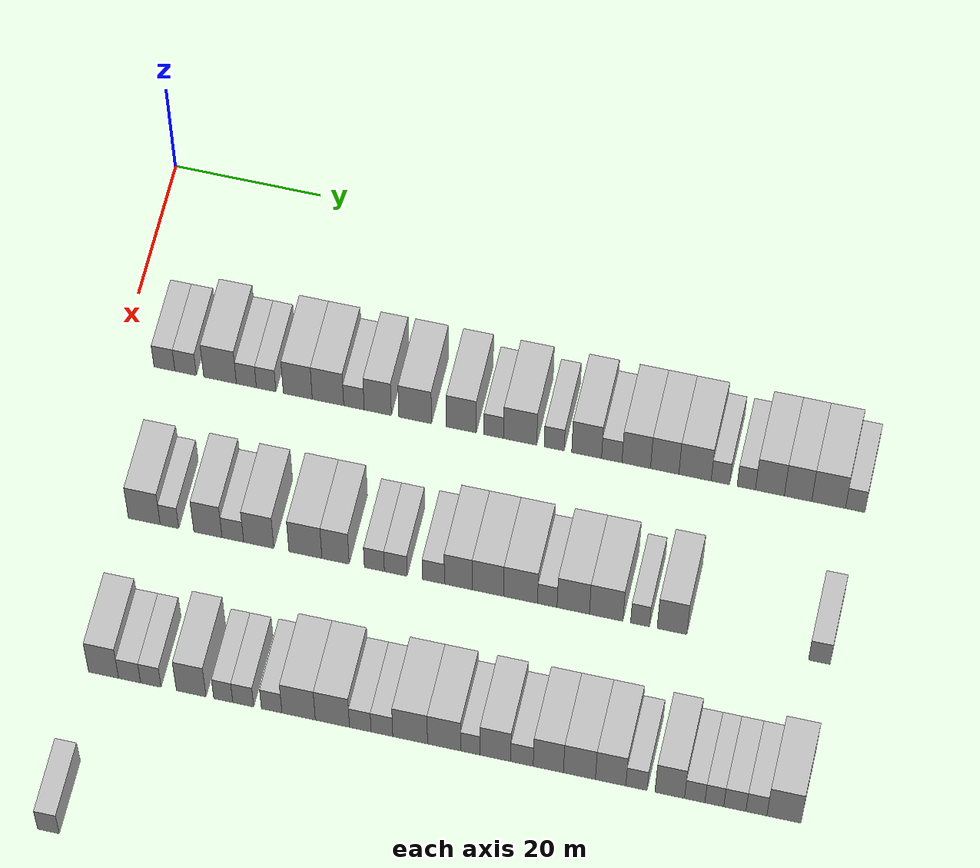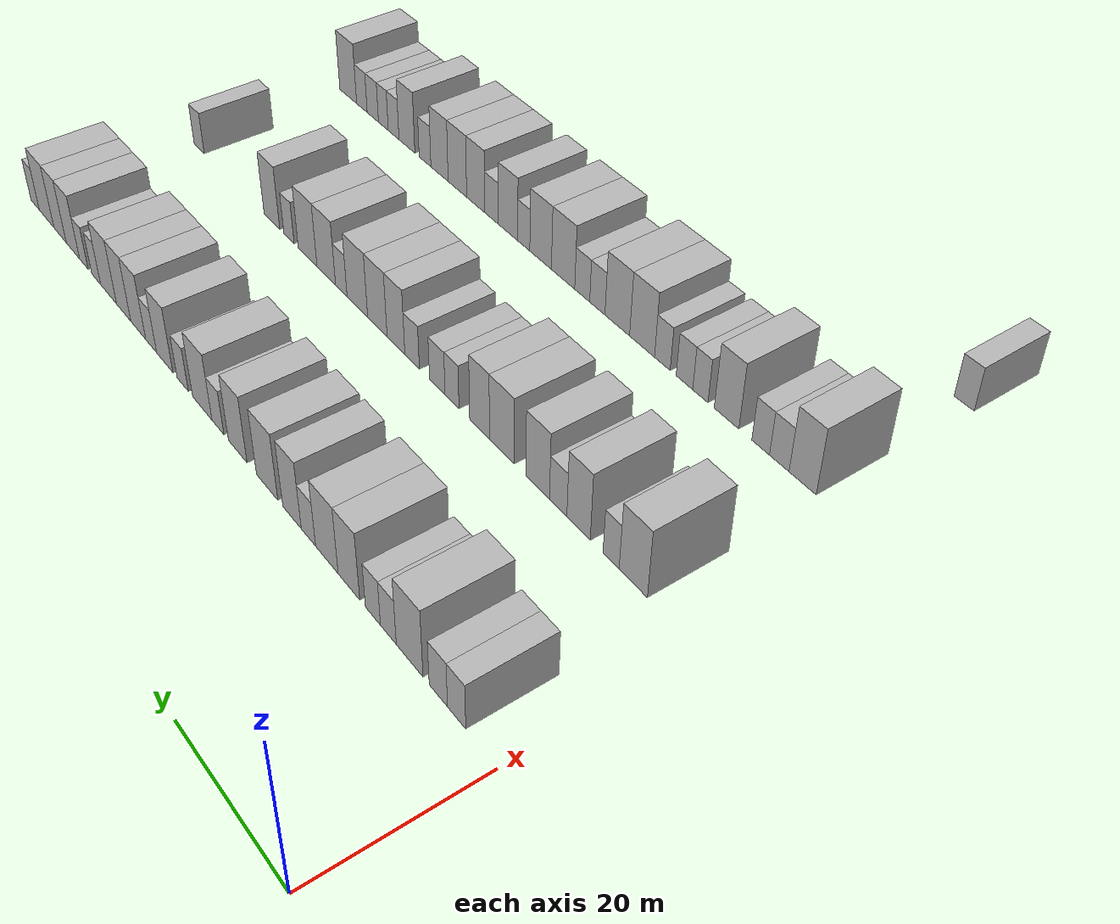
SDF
<sdf version="1.6">
 <world name="default">
  <model name="building_89">
   <static>1</static>
   <pose>25.0000 6.2380 0 0.000000 0.000000 0.000000</pose>
   <link name="link">
    <pose>0 0 3.00 0 0 0</pose>
    <collision name="collision"><geometry><box><size>10.0000 2.8306 6.0000</size></box></geometry></collision>
    <visual name="visual">
     <cast_shadows>0</cast_shadows>
     <geometry><box><size>10.0000 2.8306 6.0000</size></box></geometry>
     <material>
      <script>
       <uri>model://HANNAS_wall/materials/scripts</uri>
       <uri>model://HANNAS_wall/materials/textures</uri>
       <name>vrc/HANNAS_wall</name>
      </script>
     </material>
    </visual>
   </link>
  </model>
  <model name="building_90">
   <static>1</static>
   <pose>25.0000 9.1063 0 0.000000 0.000000 0.000000</pose>
   <link name="link">
    <pose>0 0 3.00 0 0 0</pose>
    <collision name="collision"><geometry><box><size>10.0000 2.9060 6.0000</size></box></geometry></collision>
    <visual name="visual">
     <cast_shadows>0</cast_shadows>
     <geometry><box><size>10.0000 2.9060 6.0000</size></box></geometry>
     <material>
      <script>
       <uri>model://HANNAS_wall/materials/scripts</uri>
       <uri>model://HANNAS_wall/materials/textures</uri>
       <name>vrc/HANNAS_wall</name>
      </script>
     </material>
    </visual>
   </link>
  </model>
  <model name="building_91">
   <static>1</static>
   <pose>25.0000 13.7722 0 0.000000 0.000000 0.000000</pose>
   <link name="link">
    <pose>0 0 4.50 0 0 0</pose>
    <collision name="collision"><geometry><box><size>10.0000 4.4259 9.0000</size></box></geometry></collision>
    <visual name="visual">
     <cast_shadows>0</cast_shadows>
     <geometry><box><size>10.0000 4.4259 9.0000</size></box></geometry>
     <material>
      <script>
       <uri>model://HANNAS_wall/materials/scripts</uri>
       <uri>model://HANNAS_wall/materials/textures</uri>
       <name>vrc/HANNAS_wall</name>
      </script>
     </material>
    </visual>
   </link>
  </model>
  <model name="building_92">
   <static>1</static>
   <pose>25.0000 17.3323 0 0.000000 0.000000 0.000000</pose>
   <link name="link">
    <pose>0 0 3.00 0 0 0</pose>
    <collision name="collision"><geometry><box><size>10.0000 2.6942 6.0000</size></box></geometry></collision>
    <visual name="visual">
     <cast_shadows>0</cast_shadows>
     <geometry><box><size>10.0000 2.6942 6.0000</size></box></geometry>
     <material>
      <script>
       <uri>model://HANNAS_wall/materials/scripts</uri>
       <uri>model://HANNAS_wall/materials/textures</uri>
       <name>vrc/HANNAS_wall</name>
      </script>
     </material>
    </visual>
   </link>
  </model>
  <model name="building_93">
   <static>1</static>
   <pose>25.0000 20.0000 0 0.000000 0.000000 0.000000</pose>
   <link name="link">
    <pose>0 0 3.00 0 0 0</pose>
    <collision name="collision"><geometry><box><size>10.0000 2.6412 6.0000</size></box></geometry></collision>
    <visual name="visual">
     <cast_shadows>0</cast_shadows>
     <geometry><box><size>10.0000 2.6412 6.0000</size></box></geometry>
     <material>
      <script>
       <uri>model://HANNAS_wall/materials/scripts</uri>
       <uri>model://HANNAS_wall/materials/textures</uri>
       <name>vrc/HANNAS_wall</name>
      </script>
     </material>
    </visual>
   </link>
  </model>
  <model name="building_94">
   <static>1</static>
   <pose>25.0000 24.2713 0 0.000000 0.000000 0.000000</pose>
   <link name="link">
    <pose>0 0 4.50 0 0 0</pose>
    <collision name="collision"><geometry><box><size>10.0000 3.9014 9.0000</size></box></geometry></collision>
    <visual name="visual">
     <cast_shadows>0</cast_shadows>
     <geometry><box><size>10.0000 3.9014 9.0000</size></box></geometry>
     <material>
      <script>
       <uri>model://HANNAS_wall/materials/scripts</uri>
       <uri>model://HANNAS_wall/materials/textures</uri>
       <name>vrc/HANNAS_wall</name>
      </script>
     </material>
    </visual>
   </link>
  </model>
  <model name="building_95">
   <static>1</static>
   <pose>25.0000 28.3381 0 0.000000 0.000000 0.000000</pose>
   <link name="link">
    <pose>0 0 4.50 0 0 0</pose>
    <collision name="collision"><geometry><box><size>10.0000 4.2322 9.0000</size></box></geometry></collision>
    <visual name="visual">
     <cast_shadows>0</cast_shadows>
     <geometry><box><size>10.0000 4.2322 9.0000</size></box></geometry>
     <material>
      <script>
       <uri>model://HANNAS_wall/materials/scripts</uri>
       <uri>model://HANNAS_wall/materials/textures</uri>
       <name>vrc/HANNAS_wall</name>
      </script>
     </material>
    </visual>
   </link>
  </model>
  <model name="building_96">
   <static>1</static>
   <pose>25.0000 31.8337 0 0.000000 0.000000 0.000000</pose>
   <link name="link">
    <pose>0 0 3.00 0 0 0</pose>
    <collision name="collision"><geometry><box><size>10.0000 2.7592 6.0000</size></box></geometry></collision>
    <visual name="visual">
     <cast_shadows>0</cast_shadows>
     <geometry><box><size>10.0000 2.7592 6.0000</size></box></geometry>
     <material>
      <script>
       <uri>model://HANNAS_wall/materials/scripts</uri>
       <uri>model://HANNAS_wall/materials/textures</uri>
       <name>vrc/HANNAS_wall</name>
      </script>
     </material>
    </visual>
   </link>
  </model>
  <model name="building_97">
   <static>1</static>
   <pose>25.0000 35.0362 0 0.000000 0.000000 0.000000</pose>
   <link name="link">
    <pose>0 0 4.50 0 0 0</pose>
    <collision name="collision"><geometry><box><size>10.0000 3.6457 9.0000</size></box></geometry></collision>
    <visual name="visual">
     <cast_shadows>0</cast_shadows>
     <geometry><box><size>10.0000 3.6457 9.0000</size></box></geometry>
     <material>
      <script>
       <uri>model://HANNAS_wall/materials/scripts</uri>
       <uri>model://HANNAS_wall/materials/textures</uri>
       <name>vrc/HANNAS_wall</name>
      </script>
     </material>
    </visual>
   </link>
  </model>
  <model name="building_98">
   <static>1</static>
   <pose>25.0000 40.0493 0 0.000000 0.000000 0.000000</pose>
   <link name="link">
    <pose>0 0 4.50 0 0 0</pose>
    <collision name="collision"><geometry><box><size>10.0000 4.3806 9.0000</size></box></geometry></collision>
    <visual name="visual">
     <cast_shadows>0</cast_shadows>
     <geometry><box><size>10.0000 4.3806 9.0000</size></box></geometry>
     <material>
      <script>
       <uri>model://HANNAS_wall/materials/scripts</uri>
       <uri>model://HANNAS_wall/materials/textures</uri>
       <name>vrc/HANNAS_wall</name>
      </script>
     </material>
    </visual>
   </link>
  </model>
  <model name="building_99">
   <static>1</static>
   <pose>25.0000 46.2346 0 0.000000 0.000000 0.000000</pose>
   <link name="link">
    <pose>0 0 4.50 0 0 0</pose>
    <collision name="collision"><geometry><box><size>10.0000 3.9900 9.0000</size></box></geometry></collision>
    <visual name="visual">
     <cast_shadows>0</cast_shadows>
     <geometry><box><size>10.0000 3.9900 9.0000</size></box></geometry>
     <material>
      <script>
       <uri>model://HANNAS_wall/materials/scripts</uri>
       <uri>model://HANNAS_wall/materials/textures</uri>
       <name>vrc/HANNAS_wall</name>
      </script>
     </material>
    </visual>
   </link>
  </model>
  <model name="building_100">
   <static>1</static>
   <pose>25.0000 50.5525 0 0.000000 0.000000 0.000000</pose>
   <link name="link">
    <pose>0 0 3.00 0 0 0</pose>
    <collision name="collision"><geometry><box><size>10.0000 2.6459 6.0000</size></box></geometry></collision>
    <visual name="visual">
     <cast_shadows>0</cast_shadows>
     <geometry><box><size>10.0000 2.6459 6.0000</size></box></geometry>
     <material>
      <script>
       <uri>model://HANNAS_wall/materials/scripts</uri>
       <uri>model://HANNAS_wall/materials/textures</uri>
       <name>vrc/HANNAS_wall</name>
      </script>
     </material>
    </visual>
   </link>
  </model>
  <model name="building_101">
   <static>1</static>
   <pose>25.0000 54.0810 0 0.000000 0.000000 0.000000</pose>
   <link name="link">
    <pose>0 0 4.50 0 0 0</pose>
    <collision name="collision"><geometry><box><size>10.0000 4.4110 9.0000</size></box></geometry></collision>
    <visual name="visual">
     <cast_shadows>0</cast_shadows>
     <geometry><box><size>10.0000 4.4110 9.0000</size></box></geometry>
     <material>
      <script>
       <uri>model://HANNAS_wall/materials/scripts</uri>
       <uri>model://HANNAS_wall/materials/textures</uri>
       <name>vrc/HANNAS_wall</name>
      </script>
     </material>
    </visual>
   </link>
  </model>
  <model name="building_102">
   <static>1</static>
   <pose>25.0000 58.6165 0 0.000000 0.000000 0.000000</pose>
   <link name="link">
    <pose>0 0 3.00 0 0 0</pose>
    <collision name="collision"><geometry><box><size>10.0000 2.6600 6.0000</size></box></geometry></collision>
    <visual name="visual">
     <cast_shadows>0</cast_shadows>
     <geometry><box><size>10.0000 2.6600 6.0000</size></box></geometry>
     <material>
      <script>
       <uri>model://HANNAS_wall/materials/scripts</uri>
       <uri>model://HANNAS_wall/materials/textures</uri>
       <name>vrc/HANNAS_wall</name>
      </script>
     </material>
    </visual>
   </link>
  </model>
  <model name="building_103">
   <static>1</static>
   <pose>25.0000 62.9309 0 0.000000 0.000000 0.000000</pose>
   <link name="link">
    <pose>0 0 4.50 0 0 0</pose>
    <collision name="collision"><geometry><box><size>10.0000 3.9688 9.0000</size></box></geometry></collision>
    <visual name="visual">
     <cast_shadows>0</cast_shadows>
     <geometry><box><size>10.0000 3.9688 9.0000</size></box></geometry>
     <material>
      <script>
       <uri>model://HANNAS_wall/materials/scripts</uri>
       <uri>model://HANNAS_wall/materials/textures</uri>
       <name>vrc/HANNAS_wall</name>
      </script>
     </material>
    </visual>
   </link>
  </model>
  <model name="building_104">
   <static>1</static>
   <pose>25.0000 66.2711 0 0.000000 0.000000 0.000000</pose>
   <link name="link">
    <pose>0 0 3.00 0 0 0</pose>
    <collision name="collision"><geometry><box><size>10.0000 2.7117 6.0000</size></box></geometry></collision>
    <visual name="visual">
     <cast_shadows>0</cast_shadows>
     <geometry><box><size>10.0000 2.7117 6.0000</size></box></geometry>
     <material>
      <script>
       <uri>model://HANNAS_wall/materials/scripts</uri>
       <uri>model://HANNAS_wall/materials/textures</uri>
       <name>vrc/HANNAS_wall</name>
      </script>
     </material>
    </visual>
   </link>
  </model>
  <model name="building_105">
   <static>1</static>
   <pose>25.0000 69.5205 0 0.000000 0.000000 0.000000</pose>
   <link name="link">
    <pose>0 0 4.50 0 0 0</pose>
    <collision name="collision"><geometry><box><size>10.0000 3.7871 9.0000</size></box></geometry></collision>
    <visual name="visual">
     <cast_shadows>0</cast_shadows>
     <geometry><box><size>10.0000 3.7871 9.0000</size></box></geometry>
     <material>
      <script>
       <uri>model://HANNAS_wall/materials/scripts</uri>
       <uri>model://HANNAS_wall/materials/textures</uri>
       <name>vrc/HANNAS_wall</name>
      </script>
     </material>
    </visual>
   </link>
  </model>
  <model name="building_106">
   <static>1</static>
   <pose>25.0000 73.2905 0 0.000000 0.000000 0.000000</pose>
   <link name="link">
    <pose>0 0 4.50 0 0 0</pose>
    <collision name="collision"><geometry><box><size>10.0000 3.7529 9.0000</size></box></geometry></collision>
    <visual name="visual">
     <cast_shadows>0</cast_shadows>
     <geometry><box><size>10.0000 3.7529 9.0000</size></box></geometry>
     <material>
      <script>
       <uri>model://HANNAS_wall/materials/scripts</uri>
       <uri>model://HANNAS_wall/materials/textures</uri>
       <name>vrc/HANNAS_wall</name>
      </script>
     </material>
    </visual>
   </link>
  </model>
  <model name="building_107">
   <static>1</static>
   <pose>25.0000 77.3061 0 0.000000 0.000000 0.000000</pose>
   <link name="link">
    <pose>0 0 4.50 0 0 0</pose>
    <collision name="collision"><geometry><box><size>10.0000 4.2783 9.0000</size></box></geometry></collision>
    <visual name="visual">
     <cast_shadows>0</cast_shadows>
     <geometry><box><size>10.0000 4.2783 9.0000</size></box></geometry>
     <material>
      <script>
       <uri>model://HANNAS_wall/materials/scripts</uri>
       <uri>model://HANNAS_wall/materials/textures</uri>
       <name>vrc/HANNAS_wall</name>
      </script>
     </material>
    </visual>
   </link>
  </model>
  <model name="building_108">
   <static>1</static>
   <pose>25.0000 80.6603 0 0.000000 0.000000 0.000000</pose>
   <link name="link">
    <pose>0 0 3.00 0 0 0</pose>
    <collision name="collision"><geometry><box><size>10.0000 2.4303 6.0000</size></box></geometry></collision>
    <visual name="visual">
     <cast_shadows>0</cast_shadows>
     <geometry><box><size>10.0000 2.4303 6.0000</size></box></geometry>
     <material>
      <script>
       <uri>model://HANNAS_wall/materials/scripts</uri>
       <uri>model://HANNAS_wall/materials/textures</uri>
       <name>vrc/HANNAS_wall</name>
      </script>
     </material>
    </visual>
   </link>
  </model>
  <model name="building_109">
   <static>1</static>
   <pose>25.0000 84.0819 0 0.000000 0.000000 0.000000</pose>
   <link name="link">
    <pose>0 0 3.00 0 0 0</pose>
    <collision name="collision"><geometry><box><size>10.0000 2.4129 6.0000</size></box></geometry></collision>
    <visual name="visual">
     <cast_shadows>0</cast_shadows>
     <geometry><box><size>10.0000 2.4129 6.0000</size></box></geometry>
     <material>
      <script>
       <uri>model://HANNAS_wall/materials/scripts</uri>
       <uri>model://HANNAS_wall/materials/textures</uri>
       <name>vrc/HANNAS_wall</name>
      </script>
     </material>
    </visual>
   </link>
  </model>
  <model name="building_110">
   <static>1</static>
   <pose>25.0000 87.1964 0 0.000000 0.000000 0.000000</pose>
   <link name="link">
    <pose>0 0 4.50 0 0 0</pose>
    <collision name="collision"><geometry><box><size>10.0000 3.8161 9.0000</size></box></geometry></collision>
    <visual name="visual">
     <cast_shadows>0</cast_shadows>
     <geometry><box><size>10.0000 3.8161 9.0000</size></box></geometry>
     <material>
      <script>
       <uri>model://HANNAS_wall/materials/scripts</uri>
       <uri>model://HANNAS_wall/materials/textures</uri>
       <name>vrc/HANNAS_wall</name>
      </script>
     </material>
    </visual>
   </link>
  </model>
  <model name="building_111">
   <static>1</static>
   <pose>25.0000 90.9120 0 0.000000 0.000000 0.000000</pose>
   <link name="link">
    <pose>0 0 4.50 0 0 0</pose>
    <collision name="collision"><geometry><box><size>10.0000 3.6151 9.0000</size></box></geometry></collision>
    <visual name="visual">
     <cast_shadows>0</cast_shadows>
     <geometry><box><size>10.0000 3.6151 9.0000</size></box></geometry>
     <material>
      <script>
       <uri>model://HANNAS_wall/materials/scripts</uri>
       <uri>model://HANNAS_wall/materials/textures</uri>
       <name>vrc/HANNAS_wall</name>
      </script>
     </material>
    </visual>
   </link>
  </model>
  <model name="building_112">
   <static>1</static>
   <pose>25.0000 94.9383 0 0.000000 0.000000 0.000000</pose>
   <link name="link">
    <pose>0 0 4.50 0 0 0</pose>
    <collision name="collision"><geometry><box><size>10.0000 4.4376 9.0000</size></box></geometry></collision>
    <visual name="visual">
     <cast_shadows>0</cast_shadows>
     <geometry><box><size>10.0000 4.4376 9.0000</size></box></geometry>
     <material>
      <script>
       <uri>model://HANNAS_wall/materials/scripts</uri>
       <uri>model://HANNAS_wall/materials/textures</uri>
       <name>vrc/HANNAS_wall</name>
      </script>
     </material>
    </visual>
   </link>
  </model>
  <model name="building_113">
   <static>1</static>
   <pose>25.0000 98.4319 0 0.000000 0.000000 0.000000</pose>
   <link name="link">
    <pose>0 0 3.00 0 0 0</pose>
    <collision name="collision"><geometry><box><size>10.0000 2.5497 6.0000</size></box></geometry></collision>
    <visual name="visual">
     <cast_shadows>0</cast_shadows>
     <geometry><box><size>10.0000 2.5497 6.0000</size></box></geometry>
     <material>
      <script>
       <uri>model://HANNAS_wall/materials/scripts</uri>
       <uri>model://HANNAS_wall/materials/textures</uri>
       <name>vrc/HANNAS_wall</name>
      </script>
     </material>
    </visual>
   </link>
  </model>
  <model name="building_285">
   <static>1</static>
   <pose>47.0000 9.3101 0 0.000000 0.000000 0.000000</pose>
   <link name="link">
    <pose>0 0 4.50 0 0 0</pose>
    <collision name="collision"><geometry><box><size>10.0000 4.2417 9.0000</size></box></geometry></collision>
    <visual name="visual">
     <cast_shadows>0</cast_shadows>
     <geometry><box><size>10.0000 4.2417 9.0000</size></box></geometry>
     <material>
      <script>
       <uri>model://HANNAS_wall/materials/scripts</uri>
       <uri>model://HANNAS_wall/materials/textures</uri>
       <name>vrc/HANNAS_wall</name>
      </script>
     </material>
    </visual>
   </link>
  </model>
  <model name="building_286">
   <static>1</static>
   <pose>47.0000 12.6645 0 0.000000 0.000000 0.000000</pose>
   <link name="link">
    <pose>0 0 3.00 0 0 0</pose>
    <collision name="collision"><geometry><box><size>10.0000 2.4671 6.0000</size></box></geometry></collision>
    <visual name="visual">
     <cast_shadows>0</cast_shadows>
     <geometry><box><size>10.0000 2.4671 6.0000</size></box></geometry>
     <material>
      <script>
       <uri>model://HANNAS_wall/materials/scripts</uri>
       <uri>model://HANNAS_wall/materials/textures</uri>
       <name>vrc/HANNAS_wall</name>
      </script>
     </material>
    </visual>
   </link>
  </model>
  <model name="building_287">
   <static>1</static>
   <pose>47.0000 17.7781 0 0.000000 0.000000 0.000000</pose>
   <link name="link">
    <pose>0 0 4.50 0 0 0</pose>
    <collision name="collision"><geometry><box><size>10.0000 3.7601 9.0000</size></box></geometry></collision>
    <visual name="visual">
     <cast_shadows>0</cast_shadows>
     <geometry><box><size>10.0000 3.7601 9.0000</size></box></geometry>
     <material>
      <script>
       <uri>model://HANNAS_wall/materials/scripts</uri>
       <uri>model://HANNAS_wall/materials/textures</uri>
       <name>vrc/HANNAS_wall</name>
      </script>
     </material>
    </visual>
   </link>
  </model>
  <model name="building_288">
   <static>1</static>
   <pose>47.0000 21.0905 0 0.000000 0.000000 0.000000</pose>
   <link name="link">
    <pose>0 0 3.00 0 0 0</pose>
    <collision name="collision"><geometry><box><size>10.0000 2.8648 6.0000</size></box></geometry></collision>
    <visual name="visual">
     <cast_shadows>0</cast_shadows>
     <geometry><box><size>10.0000 2.8648 6.0000</size></box></geometry>
     <material>
      <script>
       <uri>model://HANNAS_wall/materials/scripts</uri>
       <uri>model://HANNAS_wall/materials/textures</uri>
       <name>vrc/HANNAS_wall</name>
      </script>
     </material>
    </visual>
   </link>
  </model>
  <model name="building_289">
   <static>1</static>
   <pose>47.0000 24.5270 0 0.000000 0.000000 0.000000</pose>
   <link name="link">
    <pose>0 0 4.50 0 0 0</pose>
    <collision name="collision"><geometry><box><size>10.0000 4.0083 9.0000</size></box></geometry></collision>
    <visual name="visual">
     <cast_shadows>0</cast_shadows>
     <geometry><box><size>10.0000 4.0083 9.0000</size></box></geometry>
     <material>
      <script>
       <uri>model://HANNAS_wall/materials/scripts</uri>
       <uri>model://HANNAS_wall/materials/textures</uri>
       <name>vrc/HANNAS_wall</name>
      </script>
     </material>
    </visual>
   </link>
  </model>
  <model name="building_290">
   <static>1</static>
   <pose>47.0000 30.7119 0 0.000000 0.000000 0.000000</pose>
   <link name="link">
    <pose>0 0 4.50 0 0 0</pose>
    <collision name="collision"><geometry><box><size>10.0000 4.3614 9.0000</size></box></geometry></collision>
    <visual name="visual">
     <cast_shadows>0</cast_shadows>
     <geometry><box><size>10.0000 4.3614 9.0000</size></box></geometry>
     <material>
      <script>
       <uri>model://HANNAS_wall/materials/scripts</uri>
       <uri>model://HANNAS_wall/materials/textures</uri>
       <name>vrc/HANNAS_wall</name>
      </script>
     </material>
    </visual>
   </link>
  </model>
  <model name="building_291">
   <static>1</static>
   <pose>47.0000 34.6973 0 0.000000 0.000000 0.000000</pose>
   <link name="link">
    <pose>0 0 4.50 0 0 0</pose>
    <collision name="collision"><geometry><box><size>10.0000 3.6093 9.0000</size></box></geometry></collision>
    <visual name="visual">
     <cast_shadows>0</cast_shadows>
     <geometry><box><size>10.0000 3.6093 9.0000</size></box></geometry>
     <material>
      <script>
       <uri>model://HANNAS_wall/materials/scripts</uri>
       <uri>model://HANNAS_wall/materials/textures</uri>
       <name>vrc/HANNAS_wall</name>
      </script>
     </material>
    </visual>
   </link>
  </model>
  <model name="building_292">
   <static>1</static>
   <pose>47.0000 39.8232 0 0.000000 0.000000 0.000000</pose>
   <link name="link">
    <pose>0 0 3.00 0 0 0</pose>
    <collision name="collision"><geometry><box><size>10.0000 2.6424 6.0000</size></box></geometry></collision>
    <visual name="visual">
     <cast_shadows>0</cast_shadows>
     <geometry><box><size>10.0000 2.6424 6.0000</size></box></geometry>
     <material>
      <script>
       <uri>model://HANNAS_wall/materials/scripts</uri>
       <uri>model://HANNAS_wall/materials/textures</uri>
       <name>vrc/HANNAS_wall</name>
      </script>
     </material>
    </visual>
   </link>
  </model>
  <model name="building_293">
   <static>1</static>
   <pose>47.0000 42.6439 0 0.000000 0.000000 0.000000</pose>
   <link name="link">
    <pose>0 0 3.00 0 0 0</pose>
    <collision name="collision"><geometry><box><size>10.0000 2.9992 6.0000</size></box></geometry></collision>
    <visual name="visual">
     <cast_shadows>0</cast_shadows>
     <geometry><box><size>10.0000 2.9992 6.0000</size></box></geometry>
     <material>
      <script>
       <uri>model://HANNAS_wall/materials/scripts</uri>
       <uri>model://HANNAS_wall/materials/textures</uri>
       <name>vrc/HANNAS_wall</name>
      </script>
     </material>
    </visual>
   </link>
  </model>
  <model name="building_294">
   <static>1</static>
   <pose>47.0000 47.5963 0 0.000000 0.000000 0.000000</pose>
   <link name="link">
    <pose>0 0 3.00 0 0 0</pose>
    <collision name="collision"><geometry><box><size>10.0000 2.9055 6.0000</size></box></geometry></collision>
    <visual name="visual">
     <cast_shadows>0</cast_shadows>
     <geometry><box><size>10.0000 2.9055 6.0000</size></box></geometry>
     <material>
      <script>
       <uri>model://HANNAS_wall/materials/scripts</uri>
       <uri>model://HANNAS_wall/materials/textures</uri>
       <name>vrc/HANNAS_wall</name>
      </script>
     </material>
    </visual>
   </link>
  </model>
  <model name="building_295">
   <static>1</static>
   <pose>47.0000 50.8690 0 0.000000 0.000000 0.000000</pose>
   <link name="link">
    <pose>0 0 4.50 0 0 0</pose>
    <collision name="collision"><geometry><box><size>10.0000 3.6399 9.0000</size></box></geometry></collision>
    <visual name="visual">
     <cast_shadows>0</cast_shadows>
     <geometry><box><size>10.0000 3.6399 9.0000</size></box></geometry>
     <material>
      <script>
       <uri>model://HANNAS_wall/materials/scripts</uri>
       <uri>model://HANNAS_wall/materials/textures</uri>
       <name>vrc/HANNAS_wall</name>
      </script>
     </material>
    </visual>
   </link>
  </model>
  <model name="building_296">
   <static>1</static>
   <pose>47.0000 54.7414 0 0.000000 0.000000 0.000000</pose>
   <link name="link">
    <pose>0 0 4.50 0 0 0</pose>
    <collision name="collision"><geometry><box><size>10.0000 4.1049 9.0000</size></box></geometry></collision>
    <visual name="visual">
     <cast_shadows>0</cast_shadows>
     <geometry><box><size>10.0000 4.1049 9.0000</size></box></geometry>
     <material>
      <script>
       <uri>model://HANNAS_wall/materials/scripts</uri>
       <uri>model://HANNAS_wall/materials/textures</uri>
       <name>vrc/HANNAS_wall</name>
      </script>
     </material>
    </visual>
   </link>
  </model>
  <model name="building_297">
   <static>1</static>
   <pose>47.0000 59.0244 0 0.000000 0.000000 0.000000</pose>
   <link name="link">
    <pose>0 0 4.50 0 0 0</pose>
    <collision name="collision"><geometry><box><size>10.0000 4.4610 9.0000</size></box></geometry></collision>
    <visual name="visual">
     <cast_shadows>0</cast_shadows>
     <geometry><box><size>10.0000 4.4610 9.0000</size></box></geometry>
     <material>
      <script>
       <uri>model://HANNAS_wall/materials/scripts</uri>
       <uri>model://HANNAS_wall/materials/textures</uri>
       <name>vrc/HANNAS_wall</name>
      </script>
     </material>
    </visual>
   </link>
  </model>
  <model name="building_298">
   <static>1</static>
   <pose>47.0000 62.5370 0 0.000000 0.000000 0.000000</pose>
   <link name="link">
    <pose>0 0 3.00 0 0 0</pose>
    <collision name="collision"><geometry><box><size>10.0000 2.5642 6.0000</size></box></geometry></collision>
    <visual name="visual">
     <cast_shadows>0</cast_shadows>
     <geometry><box><size>10.0000 2.5642 6.0000</size></box></geometry>
     <material>
      <script>
       <uri>model://HANNAS_wall/materials/scripts</uri>
       <uri>model://HANNAS_wall/materials/textures</uri>
       <name>vrc/HANNAS_wall</name>
      </script>
     </material>
    </visual>
   </link>
  </model>
  <model name="building_299">
   <static>1</static>
   <pose>47.0000 65.9339 0 0.000000 0.000000 0.000000</pose>
   <link name="link">
    <pose>0 0 4.50 0 0 0</pose>
    <collision name="collision"><geometry><box><size>10.0000 4.2296 9.0000</size></box></geometry></collision>
    <visual name="visual">
     <cast_shadows>0</cast_shadows>
     <geometry><box><size>10.0000 4.2296 9.0000</size></box></geometry>
     <material>
      <script>
       <uri>model://HANNAS_wall/materials/scripts</uri>
       <uri>model://HANNAS_wall/materials/textures</uri>
       <name>vrc/HANNAS_wall</name>
      </script>
     </material>
    </visual>
   </link>
  </model>
  <model name="building_300">
   <static>1</static>
   <pose>47.0000 70.2361 0 0.000000 0.000000 0.000000</pose>
   <link name="link">
    <pose>0 0 4.50 0 0 0</pose>
    <collision name="collision"><geometry><box><size>10.0000 4.3748 9.0000</size></box></geometry></collision>
    <visual name="visual">
     <cast_shadows>0</cast_shadows>
     <geometry><box><size>10.0000 4.3748 9.0000</size></box></geometry>
     <material>
      <script>
       <uri>model://HANNAS_wall/materials/scripts</uri>
       <uri>model://HANNAS_wall/materials/textures</uri>
       <name>vrc/HANNAS_wall</name>
      </script>
     </material>
    </visual>
   </link>
  </model>
  <model name="building_301">
   <static>1</static>
   <pose>47.0000 74.6556 0 0.000000 0.000000 0.000000</pose>
   <link name="link">
    <pose>0 0 3.00 0 0 0</pose>
    <collision name="collision"><geometry><box><size>10.0000 2.4643 6.0000</size></box></geometry></collision>
    <visual name="visual">
     <cast_shadows>0</cast_shadows>
     <geometry><box><size>10.0000 2.4643 6.0000</size></box></geometry>
     <material>
      <script>
       <uri>model://HANNAS_wall/materials/scripts</uri>
       <uri>model://HANNAS_wall/materials/textures</uri>
       <name>vrc/HANNAS_wall</name>
      </script>
     </material>
    </visual>
   </link>
  </model>
  <model name="building_302">
   <static>1</static>
   <pose>47.0000 78.8226 0 0.000000 0.000000 0.000000</pose>
   <link name="link">
    <pose>0 0 4.50 0 0 0</pose>
    <collision name="collision"><geometry><box><size>10.0000 3.8697 9.0000</size></box></geometry></collision>
    <visual name="visual">
     <cast_shadows>0</cast_shadows>
     <geometry><box><size>10.0000 3.8697 9.0000</size></box></geometry>
     <material>
      <script>
       <uri>model://HANNAS_wall/materials/scripts</uri>
       <uri>model://HANNAS_wall/materials/textures</uri>
       <name>vrc/HANNAS_wall</name>
      </script>
     </material>
    </visual>
   </link>
  </model>
  <model name="building_303">
   <static>1</static>
   <pose>47.0000 97.9336 0 0.000000 0.000000 0.000000</pose>
   <link name="link">
    <pose>0 0 3.00 0 0 0</pose>
    <collision name="collision"><geometry><box><size>10.0000 2.7841 6.0000</size></box></geometry></collision>
    <visual name="visual">
     <cast_shadows>0</cast_shadows>
     <geometry><box><size>10.0000 2.7841 6.0000</size></box></geometry>
     <material>
      <script>
       <uri>model://HANNAS_wall/materials/scripts</uri>
       <uri>model://HANNAS_wall/materials/textures</uri>
       <name>vrc/HANNAS_wall</name>
      </script>
     </material>
    </visual>
   </link>
  </model>
  <model name="building_473">
   <static>1</static>
   <pose>69.0000 9.7690 0 0.000000 0.000000 0.000000</pose>
   <link name="link">
    <pose>0 0 4.50 0 0 0</pose>
    <collision name="collision"><geometry><box><size>10.0000 3.9402 9.0000</size></box></geometry></collision>
    <visual name="visual">
     <cast_shadows>0</cast_shadows>
     <geometry><box><size>10.0000 3.9402 9.0000</size></box></geometry>
     <material>
      <script>
       <uri>model://HANNAS_wall/materials/scripts</uri>
       <uri>model://HANNAS_wall/materials/textures</uri>
       <name>vrc/HANNAS_wall</name>
      </script>
     </material>
    </visual>
   </link>
  </model>
  <model name="building_474">
   <static>1</static>
   <pose>69.0000 13.1865 0 0.000000 0.000000 0.000000</pose>
   <link name="link">
    <pose>0 0 3.00 0 0 0</pose>
    <collision name="collision"><geometry><box><size>10.0000 2.8950 6.0000</size></box></geometry></collision>
    <visual name="visual">
     <cast_shadows>0</cast_shadows>
     <geometry><box><size>10.0000 2.8950 6.0000</size></box></geometry>
     <material>
      <script>
       <uri>model://HANNAS_wall/materials/scripts</uri>
       <uri>model://HANNAS_wall/materials/textures</uri>
       <name>vrc/HANNAS_wall</name>
      </script>
     </material>
    </visual>
   </link>
  </model>
  <model name="building_475">
   <static>1</static>
   <pose>69.0000 15.9695 0 0.000000 0.000000 0.000000</pose>
   <link name="link">
    <pose>0 0 3.00 0 0 0</pose>
    <collision name="collision"><geometry><box><size>10.0000 2.6710 6.0000</size></box></geometry></collision>
    <visual name="visual">
     <cast_shadows>0</cast_shadows>
     <geometry><box><size>10.0000 2.6710 6.0000</size></box></geometry>
     <material>
      <script>
       <uri>model://HANNAS_wall/materials/scripts</uri>
       <uri>model://HANNAS_wall/materials/textures</uri>
       <name>vrc/HANNAS_wall</name>
      </script>
     </material>
    </visual>
   </link>
  </model>
  <model name="building_476">
   <static>1</static>
   <pose>69.0000 21.2442 0 0.000000 0.000000 0.000000</pose>
   <link name="link">
    <pose>0 0 4.50 0 0 0</pose>
    <collision name="collision"><geometry><box><size>10.0000 3.8783 9.0000</size></box></geometry></collision>
    <visual name="visual">
     <cast_shadows>0</cast_shadows>
     <geometry><box><size>10.0000 3.8783 9.0000</size></box></geometry>
     <material>
      <script>
       <uri>model://HANNAS_wall/materials/scripts</uri>
       <uri>model://HANNAS_wall/materials/textures</uri>
       <name>vrc/HANNAS_wall</name>
      </script>
     </material>
    </visual>
   </link>
  </model>
  <model name="building_477">
   <static>1</static>
   <pose>69.0000 25.4248 0 0.000000 0.000000 0.000000</pose>
   <link name="link">
    <pose>0 0 3.00 0 0 0</pose>
    <collision name="collision"><geometry><box><size>10.0000 2.4829 6.0000</size></box></geometry></collision>
    <visual name="visual">
     <cast_shadows>0</cast_shadows>
     <geometry><box><size>10.0000 2.4829 6.0000</size></box></geometry>
     <material>
      <script>
       <uri>model://HANNAS_wall/materials/scripts</uri>
       <uri>model://HANNAS_wall/materials/textures</uri>
       <name>vrc/HANNAS_wall</name>
      </script>
     </material>
    </visual>
   </link>
  </model>
  <model name="building_478">
   <static>1</static>
   <pose>69.0000 28.0345 0 0.000000 0.000000 0.000000</pose>
   <link name="link">
    <pose>0 0 3.00 0 0 0</pose>
    <collision name="collision"><geometry><box><size>10.0000 2.7366 6.0000</size></box></geometry></collision>
    <visual name="visual">
     <cast_shadows>0</cast_shadows>
     <geometry><box><size>10.0000 2.7366 6.0000</size></box></geometry>
     <material>
      <script>
       <uri>model://HANNAS_wall/materials/scripts</uri>
       <uri>model://HANNAS_wall/materials/textures</uri>
       <name>vrc/HANNAS_wall</name>
      </script>
     </material>
    </visual>
   </link>
  </model>
  <model name="building_479">
   <static>1</static>
   <pose>69.0000 31.7368 0 0.000000 0.000000 0.000000</pose>
   <link name="link">
    <pose>0 0 3.00 0 0 0</pose>
    <collision name="collision"><geometry><box><size>10.0000 2.6680 6.0000</size></box></geometry></collision>
    <visual name="visual">
     <cast_shadows>0</cast_shadows>
     <geometry><box><size>10.0000 2.6680 6.0000</size></box></geometry>
     <material>
      <script>
       <uri>model://HANNAS_wall/materials/scripts</uri>
       <uri>model://HANNAS_wall/materials/textures</uri>
       <name>vrc/HANNAS_wall</name>
      </script>
     </material>
    </visual>
   </link>
  </model>
  <model name="building_480">
   <static>1</static>
   <pose>69.0000 35.2413 0 0.000000 0.000000 0.000000</pose>
   <link name="link">
    <pose>0 0 4.50 0 0 0</pose>
    <collision name="collision"><geometry><box><size>10.0000 4.3409 9.0000</size></box></geometry></collision>
    <visual name="visual">
     <cast_shadows>0</cast_shadows>
     <geometry><box><size>10.0000 4.3409 9.0000</size></box></geometry>
     <material>
      <script>
       <uri>model://HANNAS_wall/materials/scripts</uri>
       <uri>model://HANNAS_wall/materials/textures</uri>
       <name>vrc/HANNAS_wall</name>
      </script>
     </material>
    </visual>
   </link>
  </model>
  <model name="building_481">
   <static>1</static>
   <pose>69.0000 39.6285 0 0.000000 0.000000 0.000000</pose>
   <link name="link">
    <pose>0 0 4.50 0 0 0</pose>
    <collision name="collision"><geometry><box><size>10.0000 4.4334 9.0000</size></box></geometry></collision>
    <visual name="visual">
     <cast_shadows>0</cast_shadows>
     <geometry><box><size>10.0000 4.4334 9.0000</size></box></geometry>
     <material>
      <script>
       <uri>model://HANNAS_wall/materials/scripts</uri>
       <uri>model://HANNAS_wall/materials/textures</uri>
       <name>vrc/HANNAS_wall</name>
      </script>
     </material>
    </visual>
   </link>
  </model>
  <model name="building_482">
   <static>1</static>
   <pose>69.0000 43.2462 0 0.000000 0.000000 0.000000</pose>
   <link name="link">
    <pose>0 0 3.00 0 0 0</pose>
    <collision name="collision"><geometry><box><size>10.0000 2.8020 6.0000</size></box></geometry></collision>
    <visual name="visual">
     <cast_shadows>0</cast_shadows>
     <geometry><box><size>10.0000 2.8020 6.0000</size></box></geometry>
     <material>
      <script>
       <uri>model://HANNAS_wall/materials/scripts</uri>
       <uri>model://HANNAS_wall/materials/textures</uri>
       <name>vrc/HANNAS_wall</name>
      </script>
     </material>
    </visual>
   </link>
  </model>
  <model name="building_483">
   <static>1</static>
   <pose>69.0000 46.0537 0 0.000000 0.000000 0.000000</pose>
   <link name="link">
    <pose>0 0 3.00 0 0 0</pose>
    <collision name="collision"><geometry><box><size>10.0000 2.8128 6.0000</size></box></geometry></collision>
    <visual name="visual">
     <cast_shadows>0</cast_shadows>
     <geometry><box><size>10.0000 2.8128 6.0000</size></box></geometry>
     <material>
      <script>
       <uri>model://HANNAS_wall/materials/scripts</uri>
       <uri>model://HANNAS_wall/materials/textures</uri>
       <name>vrc/HANNAS_wall</name>
      </script>
     </material>
    </visual>
   </link>
  </model>
  <model name="building_484">
   <static>1</static>
   <pose>69.0000 49.7054 0 0.000000 0.000000 0.000000</pose>
   <link name="link">
    <pose>0 0 4.50 0 0 0</pose>
    <collision name="collision"><geometry><box><size>10.0000 4.4907 9.0000</size></box></geometry></collision>
    <visual name="visual">
     <cast_shadows>0</cast_shadows>
     <geometry><box><size>10.0000 4.4907 9.0000</size></box></geometry>
     <material>
      <script>
       <uri>model://HANNAS_wall/materials/scripts</uri>
       <uri>model://HANNAS_wall/materials/textures</uri>
       <name>vrc/HANNAS_wall</name>
      </script>
     </material>
    </visual>
   </link>
  </model>
  <model name="building_485">
   <static>1</static>
   <pose>69.0000 54.0877 0 0.000000 0.000000 0.000000</pose>
   <link name="link">
    <pose>0 0 4.50 0 0 0</pose>
    <collision name="collision"><geometry><box><size>10.0000 4.2738 9.0000</size></box></geometry></collision>
    <visual name="visual">
     <cast_shadows>0</cast_shadows>
     <geometry><box><size>10.0000 4.2738 9.0000</size></box></geometry>
     <material>
      <script>
       <uri>model://HANNAS_wall/materials/scripts</uri>
       <uri>model://HANNAS_wall/materials/textures</uri>
       <name>vrc/HANNAS_wall</name>
      </script>
     </material>
    </visual>
   </link>
  </model>
  <model name="building_486">
   <static>1</static>
   <pose>69.0000 57.4595 0 0.000000 0.000000 0.000000</pose>
   <link name="link">
    <pose>0 0 3.00 0 0 0</pose>
    <collision name="collision"><geometry><box><size>10.0000 2.4698 6.0000</size></box></geometry></collision>
    <visual name="visual">
     <cast_shadows>0</cast_shadows>
     <geometry><box><size>10.0000 2.4698 6.0000</size></box></geometry>
     <material>
      <script>
       <uri>model://HANNAS_wall/materials/scripts</uri>
       <uri>model://HANNAS_wall/materials/textures</uri>
       <name>vrc/HANNAS_wall</name>
      </script>
     </material>
    </visual>
   </link>
  </model>
  <model name="building_487">
   <static>1</static>
   <pose>69.0000 60.6821 0 0.000000 0.000000 0.000000</pose>
   <link name="link">
    <pose>0 0 4.50 0 0 0</pose>
    <collision name="collision"><geometry><box><size>10.0000 3.9754 9.0000</size></box></geometry></collision>
    <visual name="visual">
     <cast_shadows>0</cast_shadows>
     <geometry><box><size>10.0000 3.9754 9.0000</size></box></geometry>
     <material>
      <script>
       <uri>model://HANNAS_wall/materials/scripts</uri>
       <uri>model://HANNAS_wall/materials/textures</uri>
       <name>vrc/HANNAS_wall</name>
      </script>
     </material>
    </visual>
   </link>
  </model>
  <model name="building_488">
   <static>1</static>
   <pose>69.0000 64.1218 0 0.000000 0.000000 0.000000</pose>
   <link name="link">
    <pose>0 0 3.00 0 0 0</pose>
    <collision name="collision"><geometry><box><size>10.0000 2.9040 6.0000</size></box></geometry></collision>
    <visual name="visual">
     <cast_shadows>0</cast_shadows>
     <geometry><box><size>10.0000 2.9040 6.0000</size></box></geometry>
     <material>
      <script>
       <uri>model://HANNAS_wall/materials/scripts</uri>
       <uri>model://HANNAS_wall/materials/textures</uri>
       <name>vrc/HANNAS_wall</name>
      </script>
     </material>
    </visual>
   </link>
  </model>
  <model name="building_489">
   <static>1</static>
   <pose>69.0000 67.5158 0 0.000000 0.000000 0.000000</pose>
   <link name="link">
    <pose>0 0 4.50 0 0 0</pose>
    <collision name="collision"><geometry><box><size>10.0000 3.8841 9.0000</size></box></geometry></collision>
    <visual name="visual">
     <cast_shadows>0</cast_shadows>
     <geometry><box><size>10.0000 3.8841 9.0000</size></box></geometry>
     <material>
      <script>
       <uri>model://HANNAS_wall/materials/scripts</uri>
       <uri>model://HANNAS_wall/materials/textures</uri>
       <name>vrc/HANNAS_wall</name>
      </script>
     </material>
    </visual>
   </link>
  </model>
  <model name="building_490">
   <static>1</static>
   <pose>69.0000 71.5062 0 0.000000 0.000000 0.000000</pose>
   <link name="link">
    <pose>0 0 4.50 0 0 0</pose>
    <collision name="collision"><geometry><box><size>10.0000 4.0966 9.0000</size></box></geometry></collision>
    <visual name="visual">
     <cast_shadows>0</cast_shadows>
     <geometry><box><size>10.0000 4.0966 9.0000</size></box></geometry>
     <material>
      <script>
       <uri>model://HANNAS_wall/materials/scripts</uri>
       <uri>model://HANNAS_wall/materials/textures</uri>
       <name>vrc/HANNAS_wall</name>
      </script>
     </material>
    </visual>
   </link>
  </model>
  <model name="building_491">
   <static>1</static>
   <pose>69.0000 75.5100 0 0.000000 0.000000 0.000000</pose>
   <link name="link">
    <pose>0 0 4.50 0 0 0</pose>
    <collision name="collision"><geometry><box><size>10.0000 3.9109 9.0000</size></box></geometry></collision>
    <visual name="visual">
     <cast_shadows>0</cast_shadows>
     <geometry><box><size>10.0000 3.9109 9.0000</size></box></geometry>
     <material>
      <script>
       <uri>model://HANNAS_wall/materials/scripts</uri>
       <uri>model://HANNAS_wall/materials/textures</uri>
       <name>vrc/HANNAS_wall</name>
      </script>
     </material>
    </visual>
   </link>
  </model>
  <model name="building_492">
   <static>1</static>
   <pose>69.0000 78.8278 0 0.000000 0.000000 0.000000</pose>
   <link name="link">
    <pose>0 0 3.00 0 0 0</pose>
    <collision name="collision"><geometry><box><size>10.0000 2.7247 6.0000</size></box></geometry></collision>
    <visual name="visual">
     <cast_shadows>0</cast_shadows>
     <geometry><box><size>10.0000 2.7247 6.0000</size></box></geometry>
     <material>
      <script>
       <uri>model://HANNAS_wall/materials/scripts</uri>
       <uri>model://HANNAS_wall/materials/textures</uri>
       <name>vrc/HANNAS_wall</name>
      </script>
     </material>
    </visual>
   </link>
  </model>
  <model name="building_493">
   <static>1</static>
   <pose>69.0000 83.0787 0 0.000000 0.000000 0.000000</pose>
   <link name="link">
    <pose>0 0 4.50 0 0 0</pose>
    <collision name="collision"><geometry><box><size>10.0000 3.7770 9.0000</size></box></geometry></collision>
    <visual name="visual">
     <cast_shadows>0</cast_shadows>
     <geometry><box><size>10.0000 3.7770 9.0000</size></box></geometry>
     <material>
      <script>
       <uri>model://HANNAS_wall/materials/scripts</uri>
       <uri>model://HANNAS_wall/materials/textures</uri>
       <name>vrc/HANNAS_wall</name>
      </script>
     </material>
    </visual>
   </link>
  </model>
  <model name="building_494">
   <static>1</static>
   <pose>69.0000 86.2685 0 0.000000 0.000000 0.000000</pose>
   <link name="link">
    <pose>0 0 3.00 0 0 0</pose>
    <collision name="collision"><geometry><box><size>10.0000 2.6026 6.0000</size></box></geometry></collision>
    <visual name="visual">
     <cast_shadows>0</cast_shadows>
     <geometry><box><size>10.0000 2.6026 6.0000</size></box></geometry>
     <material>
      <script>
       <uri>model://HANNAS_wall/materials/scripts</uri>
       <uri>model://HANNAS_wall/materials/textures</uri>
       <name>vrc/HANNAS_wall</name>
      </script>
     </material>
    </visual>
   </link>
  </model>
  <model name="building_495">
   <static>1</static>
   <pose>69.0000 88.7732 0 0.000000 0.000000 0.000000</pose>
   <link name="link">
    <pose>0 0 3.00 0 0 0</pose>
    <collision name="collision"><geometry><box><size>10.0000 2.4070 6.0000</size></box></geometry></collision>
    <visual name="visual">
     <cast_shadows>0</cast_shadows>
     <geometry><box><size>10.0000 2.4070 6.0000</size></box></geometry>
     <material>
      <script>
       <uri>model://HANNAS_wall/materials/scripts</uri>
       <uri>model://HANNAS_wall/materials/textures</uri>
       <name>vrc/HANNAS_wall</name>
      </script>
     </material>
    </visual>
   </link>
  </model>
  <model name="building_496">
   <static>1</static>
   <pose>69.0000 91.3836 0 0.000000 0.000000 0.000000</pose>
   <link name="link">
    <pose>0 0 3.00 0 0 0</pose>
    <collision name="collision"><geometry><box><size>10.0000 2.8139 6.0000</size></box></geometry></collision>
    <visual name="visual">
     <cast_shadows>0</cast_shadows>
     <geometry><box><size>10.0000 2.8139 6.0000</size></box></geometry>
     <material>
      <script>
       <uri>model://HANNAS_wall/materials/scripts</uri>
       <uri>model://HANNAS_wall/materials/textures</uri>
       <name>vrc/HANNAS_wall</name>
      </script>
     </material>
    </visual>
   </link>
  </model>
  <model name="building_497">
   <static>1</static>
   <pose>69.0000 94.1307 0 0.000000 0.000000 0.000000</pose>
   <link name="link">
    <pose>0 0 3.00 0 0 0</pose>
    <collision name="collision"><geometry><box><size>10.0000 2.6803 6.0000</size></box></geometry></collision>
    <visual name="visual">
     <cast_shadows>0</cast_shadows>
     <geometry><box><size>10.0000 2.6803 6.0000</size></box></geometry>
     <material>
      <script>
       <uri>model://HANNAS_wall/materials/scripts</uri>
       <uri>model://HANNAS_wall/materials/textures</uri>
       <name>vrc/HANNAS_wall</name>
      </script>
     </material>
    </visual>
   </link>
  </model>
  <model name="building_498">
   <static>1</static>
   <pose>69.0000 97.6403 0 0.000000 0.000000 0.000000</pose>
   <link name="link">
    <pose>0 0 4.50 0 0 0</pose>
    <collision name="collision"><geometry><box><size>10.0000 4.3389 9.0000</size></box></geometry></collision>
    <visual name="visual">
     <cast_shadows>0</cast_shadows>
     <geometry><box><size>10.0000 4.3389 9.0000</size></box></geometry>
     <material>
      <script>
       <uri>model://HANNAS_wall/materials/scripts</uri>
       <uri>model://HANNAS_wall/materials/textures</uri>
       <name>vrc/HANNAS_wall</name>
      </script>
     </material>
    </visual>
   </link>
  </model>
  <model name="building_672">
   <static>1</static>
   <pose>91.0000 8.5474 0 0.000000 0.000000 0.000000</pose>
   <link name="link">
    <pose>0 0 3.00 0 0 0</pose>
    <collision name="collision"><geometry><box><size>10.0000 2.8087 6.0000</size></box></geometry></collision>
    <visual name="visual">
     <cast_shadows>0</cast_shadows>
     <geometry><box><size>10.0000 2.8087 6.0000</size></box></geometry>
     <material>
      <script>
       <uri>model://HANNAS_wall/materials/scripts</uri>
       <uri>model://HANNAS_wall/materials/textures</uri>
       <name>vrc/HANNAS_wall</name>
      </script>
     </material>
    </visual>
   </link>
  </model>
 </world>
</sdf>
